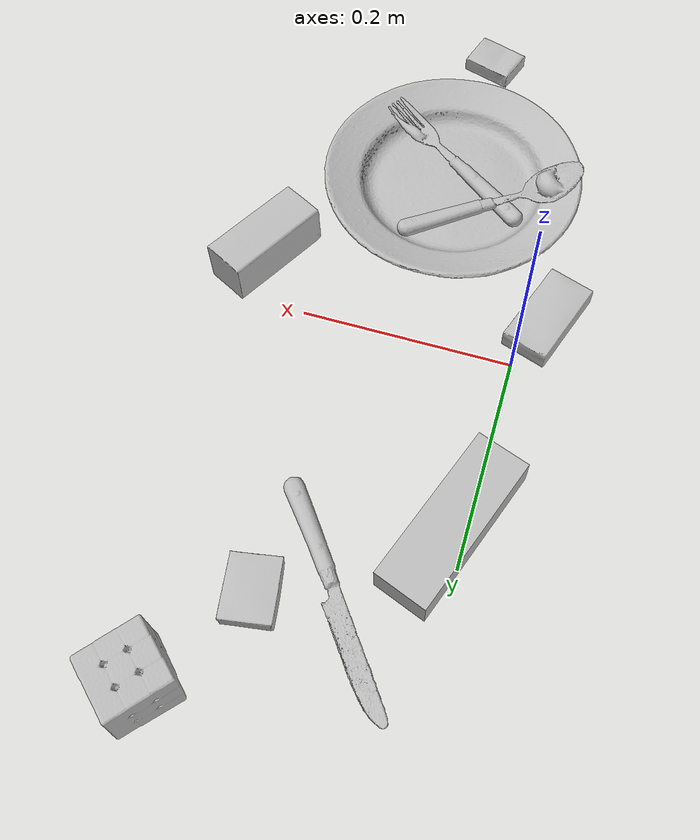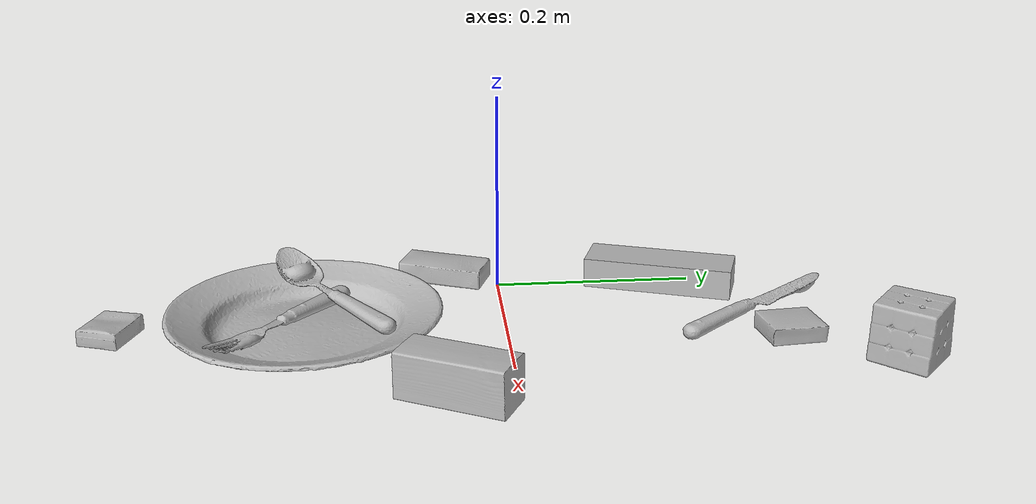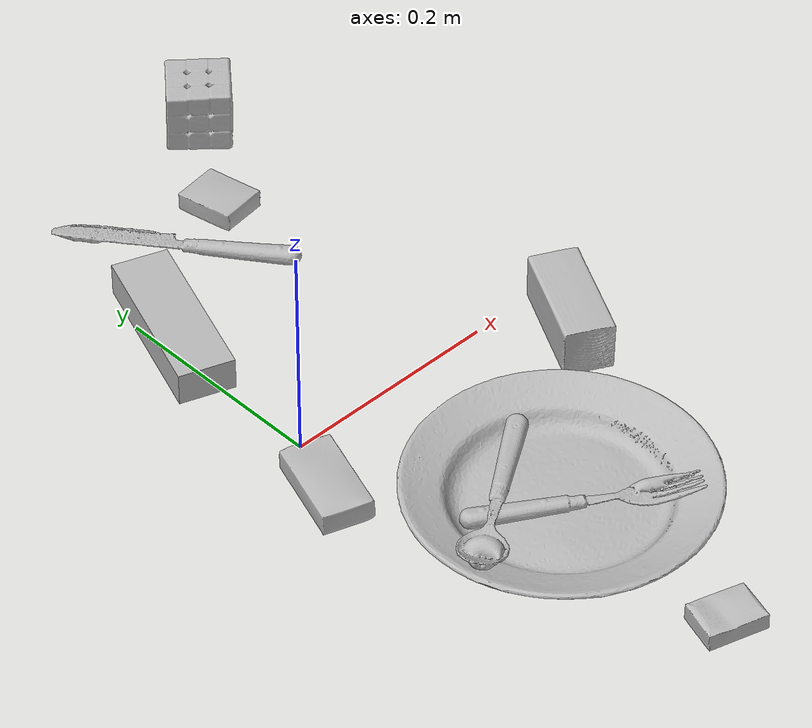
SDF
<sdf version="1.4">
  <world name="default">
    <light name="light1" type="point">
      <pose>0 0 1 0 0 0</pose>
      <diffuse>3 3 3 1</diffuse>
      <specular>3 3 3 1</specular>
    </light>
    <light name="light2" type="point">
      <pose>0 0.5 2 0 0 0</pose>
      <diffuse>1 1 1 1</diffuse>
      <specular>1 1 1 1</specular>
    </light>
    <light name="light3" type="point">
      <pose>0 0.5 2 0 0 0</pose>
      <diffuse>3 3 3 1</diffuse>
      <specular>3 3 3 1</specular>
    </light>
    <scene>
      <ambient>0.7 0.7 0.7</ambient>
    </scene>
    <model name="box11">
      <link name="link_box11">
        <collision name="default">
          <geometry>
            <mesh>
              <uri>model://cracker_box/collision_meshes/collision.obj</uri>
              <scale>0.25 0.25 0.25</scale>
            </mesh>
          </geometry>
          <surface>
            <friction>
              <ode>
                <mu>0.5</mu>
                <mu2>0.5</mu2>
              </ode>
            </friction>
          <contact>
        <ode>
            <max_vel>0</max_vel>
            <min_depth>0.0001</min_depth>
            <kp>1e8</kp>
        </ode>
    </contact></surface>
        </collision>
        <visual name="default">
          <geometry>
            <mesh>
              <uri>model://cracker_box/visual_meshes/visual.dae</uri>
              <scale>0.25 0.25 0.25</scale>
            </mesh>
          </geometry>
        </visual>
        <inertial>
          <mass>0.022244147956371307</mass>
          <pose>0.00023660442093387246 6.358561950037256e-05 -0.00042573834070935845 -0.00031620774024180285 -0.011106489600345375 0.0025467943041161943</pose>
          <inertia>
            <ixx>3.5361988e-06</ixx>
            <iyy>5.838959e-06</iyy>
            <izz>8.33273e-06</izz>
            <ixy>0</ixy>
            <ixz>0</ixz>
            <iyz>0</iyz>
          </inertia>
        </inertial>
      </link>
      <pose>0.10210904479026794 -0.3720405697822571 0.009096026420593262 -0.014051198261962314 -0.005016266301817209 -0.3096680829692241</pose>
    </model>
    <model name="box12">
      <link name="link_box12">
        <collision name="default">
          <geometry>
            <mesh>
              <uri>model://wood_block/collision_meshes/collision.obj</uri>
              <scale>0.5 0.5 0.5</scale>
            </mesh>
          </geometry>
          <surface>
            <friction>
              <ode>
                <mu>0.5</mu>
                <mu2>0.5</mu2>
              </ode>
            </friction>
          <contact>
        <ode>
            <max_vel>0</max_vel>
            <min_depth>0.0001</min_depth>
            <kp>1e8</kp>
        </ode>
    </contact></surface>
        </collision>
        <visual name="default">
          <geometry>
            <mesh>
              <uri>model://wood_block/visual_meshes/visual.dae</uri>
              <scale>0.5 0.5 0.5</scale>
            </mesh>
          </geometry>
        </visual>
        <inertial>
          <mass>0.19826212525367737</mass>
          <pose>-2.9066577553749084e-06 -0.00028540476341731846 0.00013204291462898254 -0.05221087153268513 -0.0051926957009938435 -0.006861378574469354</pose>
          <inertia>
            <ixx>6.632619e-05</ixx>
            <iyy>0.00020952444</iyy>
            <izz>0.0002087407</izz>
            <ixy>0</ixy>
            <ixz>0</ixz>
            <iyz>0</iyz>
          </inertia>
        </inertial>
      </link>
      <pose>0.25619345903396606 -0.0532870851457119 0.022629264742136 -0.005208468976544386 0.005718710063472395 -2.0553055432859626</pose>
    </model>
    <model name="box13">
      <link name="link_box13">
        <collision name="default">
          <geometry>
            <mesh>
              <uri>model://pudding_box/collision_meshes/collision.obj</uri>
              <scale>0.5 0.5 0.5</scale>
            </mesh>
          </geometry>
          <surface>
            <friction>
              <ode>
                <mu>0.5</mu>
                <mu2>0.5</mu2>
              </ode>
            </friction>
          <contact>
        <ode>
            <max_vel>0</max_vel>
            <min_depth>0.0001</min_depth>
            <kp>1e8</kp>
        </ode>
    </contact></surface>
        </collision>
        <visual name="default">
          <geometry>
            <mesh>
              <uri>model://pudding_box/visual_meshes/visual.dae</uri>
              <scale>0.5 0.5 0.5</scale>
            </mesh>
          </geometry>
        </visual>
        <inertial>
          <mass>0.049741584807634354</mass>
          <pose>0.00024474109522998333 0.0004033942532259971 -0.0002594413817860186 0.005213101800084814 -0.006603799174386178 0.020079821432586128</pose>
          <inertia>
            <ixx>1.4057575e-05</ixx>
            <iyy>9.458037e-06</iyy>
            <izz>2.0759684e-05</izz>
            <ixy>0</ixy>
            <ixz>0</ixz>
            <iyz>0</iyz>
          </inertia>
        </inertial>
      </link>
      <pose>0.15209220349788666 0.26537662744522095 0.009862901642918587 0.022348619269993365 -0.011391669608280766 -2.9805475569116524</pose>
    </model>
    <model name="box21">
      <link name="link_box21">
        <collision name="default">
          <geometry>
            <mesh>
              <uri>model://rubiks_cube/collision_meshes/collision.obj</uri>
              <scale>1.0 1.0 1.0</scale>
            </mesh>
          </geometry>
          <surface>
            <friction>
              <ode>
                <mu>0.5</mu>
                <mu2>0.5</mu2>
              </ode>
            </friction>
          <contact>
        <ode>
            <max_vel>0</max_vel>
            <min_depth>0.0001</min_depth>
            <kp>1e8</kp>
        </ode>
    </contact></surface>
        </collision>
        <visual name="default">
          <geometry>
            <mesh>
              <uri>model://rubiks_cube/visual_meshes/visual.dae</uri>
              <scale>1.0 1.0 1.0</scale>
            </mesh>
          </geometry>
        </visual>
        <inertial>
          <mass>0.14589080214500427</mass>
          <pose>2.6721043468569405e-05 5.256966323941015e-05 -7.264316082000732e-06 -0.054672881442690106 -0.09814117646273159 -0.034455034483302956</pose>
          <inertia>
            <ixx>8.061447e-05</ixx>
            <iyy>8.023852e-05</iyy>
            <izz>8.128248e-05</izz>
            <ixy>0</ixy>
            <ixz>0</ixz>
            <iyz>0</iyz>
          </inertia>
        </inertial>
      </link>
      <pose>0.2111990749835968 0.3564482629299164 0.02867893874645233 -5.471278599548233e-06 -1.7559215709972124e-06 2.432293033814639</pose>
    </model>
    <model name="box22">
      <link name="link_box22">
        <collision name="default">
          <geometry>
            <mesh>
              <uri>model://jenga/collision_meshes/collision.obj</uri>
              <scale>1.0 1.0 1.0</scale>
            </mesh>
          </geometry>
          <surface>
            <friction>
              <ode>
                <mu>0.5</mu>
                <mu2>0.5</mu2>
              </ode>
            </friction>
          <contact>
        <ode>
            <max_vel>0</max_vel>
            <min_depth>0.0001</min_depth>
            <kp>1e8</kp>
        </ode>
    </contact></surface>
        </collision>
        <visual name="default">
          <geometry>
            <mesh>
              <uri>model://jenga/visual_meshes/visual.dae</uri>
              <scale>1.0 1.0 1.0</scale>
            </mesh>
          </geometry>
        </visual>
        <inertial>
          <mass>0.13963866233825684</mass>
          <pose>-2.502855807051674e-07 -0.00010250010382151231 -4.092339804628864e-05 0.0 -7.342154049184251e-07 0.0</pose>
          <inertia>
            <ixx>3.8641407e-05</ixx>
            <iyy>0.00026183313</iyy>
            <izz>0.00027952914</izz>
            <ixy>0</ixy>
            <ixz>0</ixz>
            <iyz>0</iyz>
          </inertia>
        </inertial>
      </link>
      <pose>0.012974592857062817 0.16803434491157532 0.01499999314546585 -7.321933316523247e-09 9.042912538924239e-10 1.2244135219571814</pose>
    </model>
    <model name="box23">
      <link name="link_box23">
        <collision name="default">
          <geometry>
            <mesh>
              <uri>model://sugar_box/collision_meshes/collision.obj</uri>
              <scale>0.5 0.5 0.5</scale>
            </mesh>
          </geometry>
          <surface>
            <friction>
              <ode>
                <mu>0.5</mu>
                <mu2>0.5</mu2>
              </ode>
            </friction>
          <contact>
        <ode>
            <max_vel>0</max_vel>
            <min_depth>0.0001</min_depth>
            <kp>1e8</kp>
        </ode>
    </contact></surface>
        </collision>
        <visual name="default">
          <geometry>
            <mesh>
              <uri>model://sugar_box/visual_meshes/visual.dae</uri>
              <scale>0.5 0.5 0.5</scale>
            </mesh>
          </geometry>
        </visual>
        <inertial>
          <mass>0.09426560252904892</mass>
          <pose>0.0005171863595023751 1.924554817378521e-05 -0.00018182402709499002 -0.00040462606744182556 0.0010506635219056535 0.0026153790218759383</pose>
          <inertia>
            <ixx>1.963546e-05</ixx>
            <iyy>6.346583e-05</iyy>
            <izz>7.597618e-05</izz>
            <ixy>0</ixy>
            <ixz>0</ixz>
            <iyz>0</iyz>
          </inertia>
        </inertial>
      </link>
      <pose>-0.021273041144013405 -0.05373261496424675 0.011399302631616592 0.0007756456028865335 -0.02343253744967308 -1.91117892334338</pose>
    </model>
    <model name="plate1">
      <link name="link_plate1">
        <collision name="default">
          <geometry>
            <mesh>
              <uri>model://plate/collision_meshes/collision.obj</uri>
              <scale>1.0 1.0 1.0</scale>
            </mesh>
          </geometry>
          <surface>
            <friction>
              <ode>
                <mu>0.5</mu>
                <mu2>0.5</mu2>
              </ode>
            </friction>
          <contact>
        <ode>
            <max_vel>0</max_vel>
            <min_depth>0.0001</min_depth>
            <kp>1e8</kp>
        </ode>
    </contact></surface>
        </collision>
        <visual name="default">
          <geometry>
            <mesh>
              <uri>model://plate/visual_meshes/visual.dae</uri>
              <scale>1.0 1.0 1.0</scale>
            </mesh>
          </geometry>
        </visual>
        <inertial>
          <mass>0.11197491735219955</mass>
          <pose>-0.0006044617621228099 0.00027825823053717613 -0.001056199544109404 0.00221882520869589 -0.003225452482750881 0.45259630068278056</pose>
          <inertia>
            <ixx>0.0005238209</ixx>
            <iyy>0.00051881076</iyy>
            <izz>0.0010245154</izz>
            <ixy>0</ixy>
            <ixz>0</ixz>
            <iyz>0</iyz>
          </inertia>
        </inertial>
      </link>
      <pose>0.10522853583097458 -0.19015291333198547 0.013733048923313618 3.7654013486445506e-07 5.448561659909418e-07 -2.0253549089832013</pose>
    </model>
    <model name="silverware1">
      <link name="link_silverware1">
        <collision name="default">
          <geometry>
            <mesh>
              <uri>model://knife/collision_meshes/collision.obj</uri>
              <scale>1.0 1.0 1.0</scale>
            </mesh>
          </geometry>
          <surface>
            <friction>
              <ode>
                <mu>0.5</mu>
                <mu2>0.5</mu2>
              </ode>
            </friction>
          <contact>
        <ode>
            <max_vel>0</max_vel>
            <min_depth>0.0001</min_depth>
            <kp>1e8</kp>
        </ode>
    </contact></surface>
        </collision>
        <visual name="default">
          <geometry>
            <mesh>
              <uri>model://knife/visual_meshes/visual.dae</uri>
              <scale>1.0 1.0 1.0</scale>
            </mesh>
          </geometry>
        </visual>
        <inertial>
          <mass>0.01465720683336258</mass>
          <pose>-0.023785248398780823 0.0015275123296305537 5.062019408796914e-05 0.07304601322977639 0.017248415474028462 -0.007409829977624996</pose>
          <inertia>
            <ixx>4.1603096e-07</ixx>
            <iyy>5.6310615e-05</iyy>
            <izz>5.6444613e-05</izz>
            <ixy>0</ixy>
            <ixz>0</ixz>
            <iyz>0</iyz>
          </inertia>
        </inertial>
      </link>
      <pose>0.08991855382919312 0.25057756900787354 0.007946516387164593 -0.02392031736655134 -0.014542449265722901 2.2272982868069273</pose>
    </model>
    <model name="silverware2">
      <link name="link_silverware2">
        <collision name="default">
          <geometry>
            <mesh>
              <uri>model://spoon/collision_meshes/collision.obj</uri>
              <scale>1.0 1.0 1.0</scale>
            </mesh>
          </geometry>
          <surface>
            <friction>
              <ode>
                <mu>0.5</mu>
                <mu2>0.5</mu2>
              </ode>
            </friction>
          <contact>
        <ode>
            <max_vel>0</max_vel>
            <min_depth>0.0001</min_depth>
            <kp>1e8</kp>
        </ode>
    </contact></surface>
        </collision>
        <visual name="default">
          <geometry>
            <mesh>
              <uri>model://spoon/visual_meshes/visual.dae</uri>
              <scale>1.0 1.0 1.0</scale>
            </mesh>
          </geometry>
        </visual>
        <inertial>
          <mass>0.03463635593652725</mass>
          <pose>-0.005526320077478886 -0.0016034176805987954 -0.0007271658396348357 0.035218626746325574 -0.03906584480927328 0.006150611928774215</pose>
          <inertia>
            <ixx>1.9265303e-06</ixx>
            <iyy>0.0001317902</iyy>
            <izz>0.00013274024</izz>
            <ixy>0</ixy>
            <ixz>0</ixz>
            <iyz>0</iyz>
          </inertia>
        </inertial>
      </link>
      <pose>0.059836339205503464 -0.16678087413311005 0.021780651062726974 -0.0719987415197716 -0.035430386779544756 -2.5377380031542778</pose>
    </model>
    <model name="silverware3">
      <link name="link_silverware3">
        <collision name="default">
          <geometry>
            <mesh>
              <uri>model://fork/collision_meshes/collision.obj</uri>
              <scale>1.0 1.0 1.0</scale>
            </mesh>
          </geometry>
          <surface>
            <friction>
              <ode>
                <mu>0.5</mu>
                <mu2>0.5</mu2>
              </ode>
            </friction>
          <contact>
        <ode>
            <max_vel>0</max_vel>
            <min_depth>0.0001</min_depth>
            <kp>1e8</kp>
        </ode>
    </contact></surface>
        </collision>
        <visual name="default">
          <geometry>
            <mesh>
              <uri>model://fork/visual_meshes/visual.dae</uri>
              <scale>1.0 1.0 1.0</scale>
            </mesh>
          </geometry>
        </visual>
        <inertial>
          <mass>0.019285527989268303</mass>
          <pose>-0.029570043087005615 0.0004658823017962277 0.0003218861238565296 -0.013551447953525298 -0.010977835959949084 0.014453901308334693</pose>
          <inertia>
            <ixx>6.760669e-07</ixx>
            <iyy>5.0348972e-05</iyy>
            <izz>5.065136e-05</izz>
            <ixy>0</ixy>
            <ixz>0</ixz>
            <iyz>0</iyz>
          </inertia>
        </inertial>
      </link>
      <pose>0.10771144181489944 -0.2113841027021408 0.014305279590189457 0.025250891612575002 -0.038596655127651085 -0.6070824176657322</pose>
    </model>
  <physics type="ode">
      <max_contacts>50</max_contacts>
      <ode>
        <solver>
          <type>quick</type>
          <iters>75</iters>
        </solver>
        <constraints>
          <contact_max_correcting_vel>0</contact_max_correcting_vel>
          <contact_surface_layer>0</contact_surface_layer>
        </constraints>
      </ode>
    </physics></world>
</sdf>
